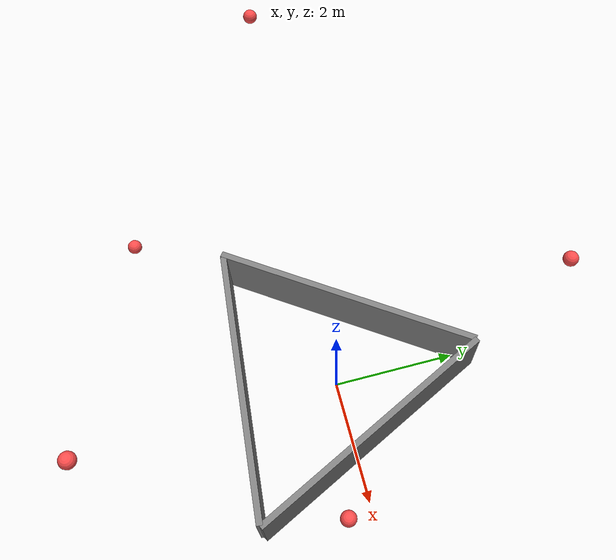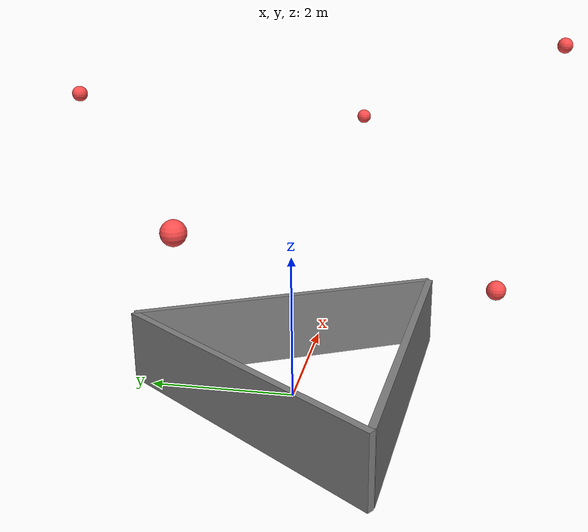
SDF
<sdf version="1.9">
 <world name="apple_tree_3">
  <static>true</static>
  <include>
   <name>apple_1</name>
   <uri>model://ideal_apple</uri>
   <pose>-4.58906031 -0.08991295099 3.8472411632537842 0 0 0</pose>
  </include>
  <include>
   <name>apple_2</name>
   <uri>model://ideal_apple</uri>
   <pose>0.4845397472 2.909890056 3.9418914318084717 0 0 0</pose>
  </include>
  <include>
   <name>apple_3</name>
   <uri>model://ideal_apple</uri>
   <pose>1.593549728 -3.324730039 4.5545792579650879 0 0 0</pose>
  </include>
  <include>
   <name>apple_4</name>
   <uri>model://ideal_apple</uri>
   <pose>2.716046333 -0.5851819813 3.336090087890625 0 0 0</pose>
  </include>
  <include>
   <name>apple_5</name>
   <uri>model://ideal_apple</uri>
   <pose>-1.96336031 -2.513149977 2.508591890335083 0 0 0</pose>
  </include>
  <include><uri>model://fence</uri><name>fence</name><pose>-1.10359 0.4616376 0 0 0 -0.61268</pose></include>
  <include>
   <uri>model://fence</uri>
   <name>fence_0</name>
   <pose>1.14072776 0.2879297 0 0 0 0.453318</pose>
  </include>
  <include>
   <uri>model://fence</uri>
   <name>fence_1</name>
   <pose>-0.11096421 -1.5093513727 0 0 0 1.48581</pose>
  </include>
 </world>
</sdf>

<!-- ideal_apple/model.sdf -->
<sdf version="1.9">

    <model name='ideal_apple'>
    <static>true</static>
      <link name='ideal_apple_link'>
        <visual name='visual'>
          <geometry>
            <sphere>
              <radius>0.10000000000000001</radius>
            </sphere>
          </geometry>
          <material>
            <ambient>0.9 0.2 0.2 1</ambient>
            <diffuse>1 0.3 0.3 1</diffuse>
            <specular>1 1 1 1</specular>
            <emissive>0.666599989 0 0 1</emissive>
          </material>
        </visual>
      </link>
    </model>
</sdf>

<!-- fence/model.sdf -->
<sdf version="1.5">
  <model name="fence">
    <static>true</static>
    <link name="link">
      <pose>0 0 0.497 0 0 0</pose>
      <collision name="collision">
        <geometry>
          <box>
            <size>0.1 4.4 1</size>
          </box>
        </geometry>
      </collision>
      <visual name="visual">
        <cast_shadows>false</cast_shadows>
        <geometry>
          <box>
            <size>0.1 4.4 1</size>
          </box>
        </geometry>

        <material>
          <ambient>0.8 0.8 0.8 1.0</ambient>
          <diffuse>0.5 0.5 0.5 1.0</diffuse>
          <specular>0.2 0.2 0.2 1.0</specular>

          <pbr>
            <metal>
              <albedo_map>
                model://fence/materials/textures/woodboarding4.jpg
              </albedo_map>
              <emissive_map>
                model://fence/materials/textures/woodboarding4.jpg
              </emissive_map>
            </metal>
          </pbr>
        </material>
      </visual>
    </link>
  </model>
</sdf>
